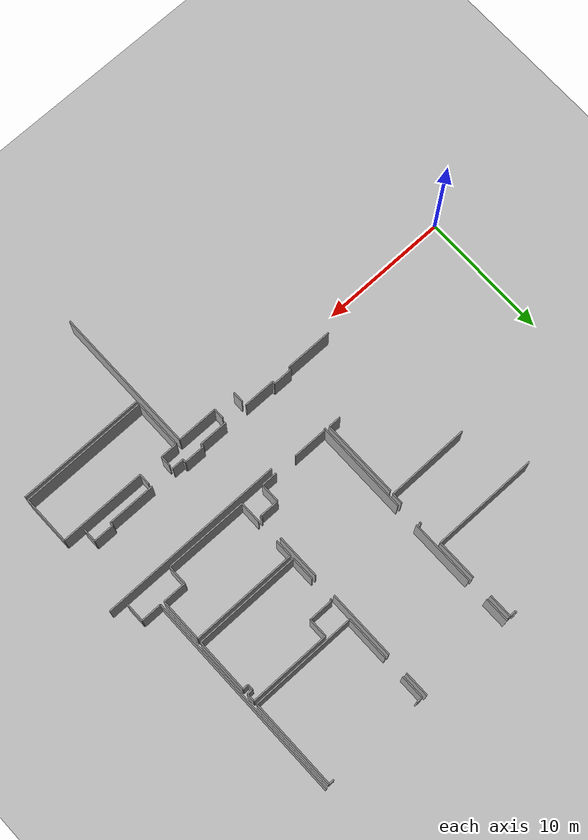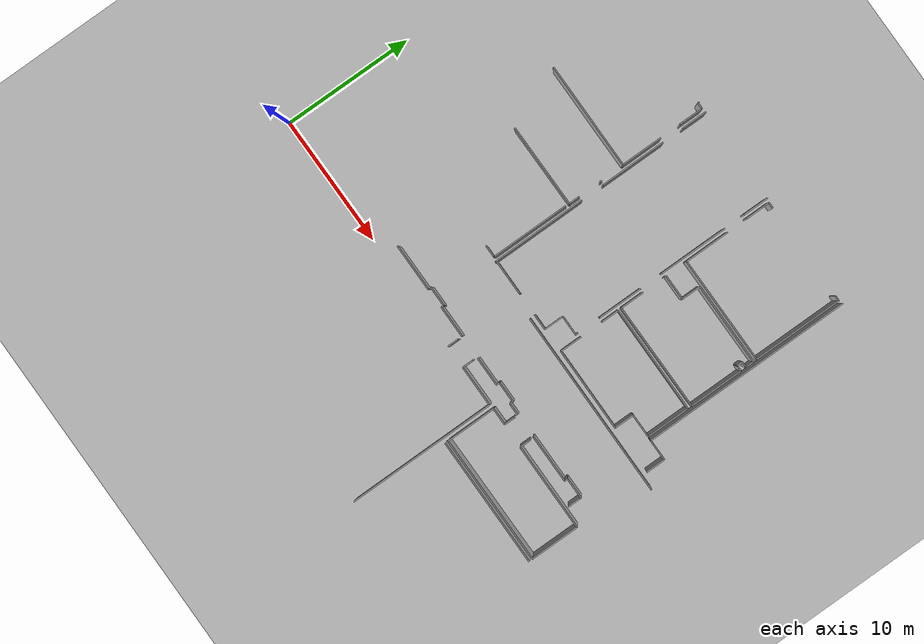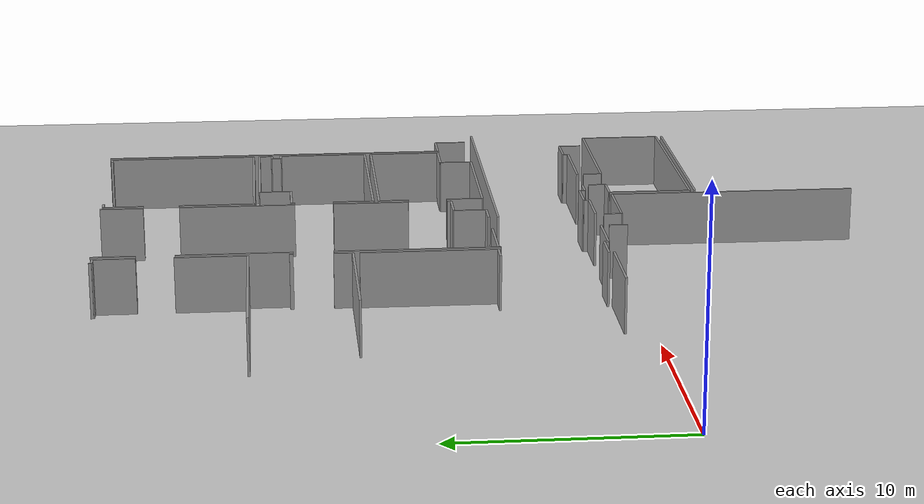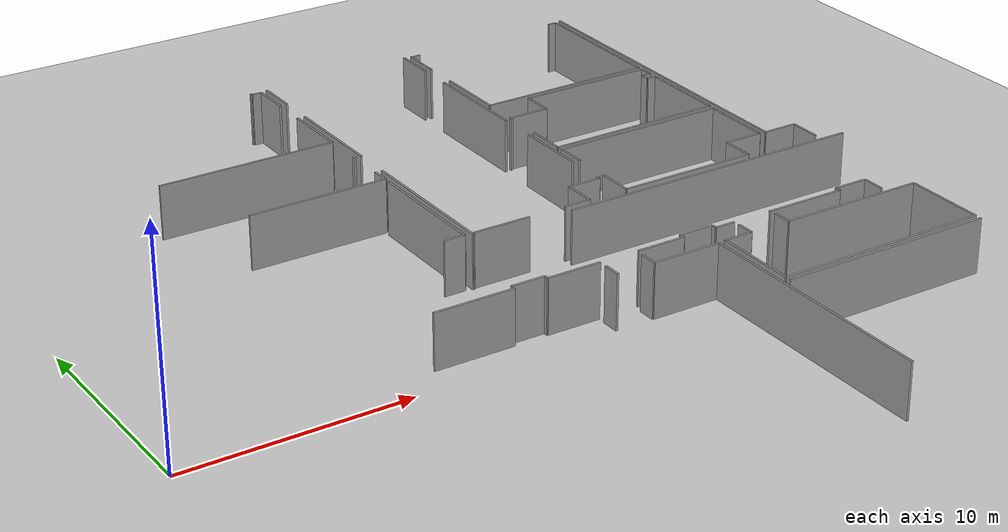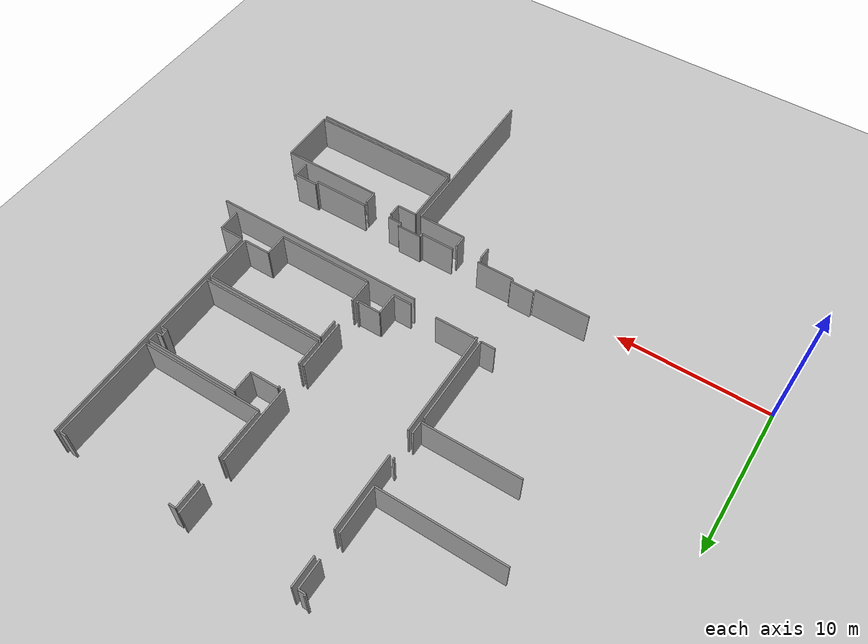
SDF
<sdf version="1.6">
 <world name="default">
  <model name="ground_plane">
   <static>1</static>
   <link name="link">
    <collision name="collision">
     <geometry><plane><normal>0 0 1</normal><size>100 100</size></plane></geometry>
     <surface><friction><ode><mu>100</mu><mu2>50</mu2></ode></friction></surface>
    </collision>
    <visual name="visual">
     <cast_shadows>0</cast_shadows>
     <geometry><plane><normal>0 0 1</normal><size>100 100</size></plane></geometry>
     <material>
      <script><uri>file://media/materials/scripts/gazebo.material</uri><name>Gazebo/Grey</name></script>
     </material>
    </visual>
   </link>
  </model>
  <model name="50057022">
   <static>1</static>
   <link name="Wall_67">
    <collision name="Wall_67_Collision">
     <geometry><box><size>0.131169729828 0.1 2.5</size></box></geometry>
     <pose>0.0655848649142 0 1.25 0 0 0</pose>
    </collision>
    <visual name="Wall_67_Visual">
     <pose>0.0655848649142 0 1.25 0 0 0</pose>
     <geometry><box><size>0.131169729828 0.1 2.5</size></box></geometry>
     <material>
      <script><uri>file://media/materials/scripts/gazebo.material</uri><name>Gazebo/Grey</name></script>
      <ambient>1 1 1 1</ambient>
     </material>
    </visual>
    <pose>72.0850537479 -0.0 0 0 0 -1.57079632679</pose>
   </link>
   <link name="Wall_68">
    <collision name="Wall_68_Collision">
     <geometry><box><size>0.466381261612 0.1 2.5</size></box></geometry>
     <pose>0.233190630806 0 1.25 0 0 0</pose>
    </collision>
    <visual name="Wall_68_Visual">
     <pose>0.233190630806 0 1.25 0 0 0</pose>
     <geometry><box><size>0.466381261612 0.1 2.5</size></box></geometry>
     <material>
      <script><uri>file://media/materials/scripts/gazebo.material</uri><name>Gazebo/Grey</name></script>
      <ambient>1 1 1 1</ambient>
     </material>
    </visual>
    <pose>72.0850537479 -0.131169729828 0 0 0 0.0</pose>
   </link>
   <link name="Wall_69">
    <collision name="Wall_69_Collision">
     <geometry><box><size>1.8363762176 0.1 2.5</size></box></geometry>
     <pose>0.918188108799 0 1.25 0 0 0</pose>
    </collision>
    <visual name="Wall_69_Visual">
     <pose>0.918188108799 0 1.25 0 0 0</pose>
     <geometry><box><size>1.8363762176 0.1 2.5</size></box></geometry>
     <material>
      <script><uri>file://media/materials/scripts/gazebo.material</uri><name>Gazebo/Grey</name></script>
      <ambient>1 1 1 1</ambient>
     </material>
    </visual>
    <pose>72.5514350095 -0.131169729828 0 0 0 -1.57079632679</pose>
   </link>
   <link name="Wall_70">
    <collision name="Wall_70_Collision">
     <geometry><box><size>3.15567755819 0.1 2.5</size></box></geometry>
     <pose>1.57783877909 0 1.25 0 0 0</pose>
    </collision>
    <visual name="Wall_70_Visual">
     <pose>1.57783877909 0 1.25 0 0 0</pose>
     <geometry><box><size>3.15567755819 0.1 2.5</size></box></geometry>
     <material>
      <script><uri>file://media/materials/scripts/gazebo.material</uri><name>Gazebo/Grey</name></script>
      <ambient>1 1 1 1</ambient>
     </material>
    </visual>
    <pose>72.5514350095 -3.60621706499 0 0 0 -1.57079632679</pose>
   </link>
   <link name="Wall_71">
    <collision name="Wall_71_Collision">
     <geometry><box><size>8.20539534595 0.1 2.5</size></box></geometry>
     <pose>4.10269767298 0 1.25 0 0 0</pose>
    </collision>
    <visual name="Wall_71_Visual">
     <pose>4.10269767298 0 1.25 0 0 0</pose>
     <geometry><box><size>8.20539534595 0.1 2.5</size></box></geometry>
     <material>
      <script><uri>file://media/materials/scripts/gazebo.material</uri><name>Gazebo/Grey</name></script>
      <ambient>1 1 1 1</ambient>
     </material>
    </visual>
    <pose>72.5514350095 -6.76189462318 0 0 0 -3.14151542755</pose>
   </link>
   <link name="Wall_82">
    <collision name="Wall_82_Collision">
     <geometry><box><size>0.165387920218 0.1 2.5</size></box></geometry>
     <pose>0.0826939601092 0 1.25 0 0 0</pose>
    </collision>
    <visual name="Wall_82_Visual">
     <pose>0.0826939601092 0 1.25 0 0 0</pose>
     <geometry><box><size>0.165387920218 0.1 2.5</size></box></geometry>
     <material>
      <script><uri>file://media/materials/scripts/gazebo.material</uri><name>Gazebo/Grey</name></script>
      <ambient>1 1 1 1</ambient>
     </material>
    </visual>
    <pose>72.5895819551 -8.55099904443 0 0 0 -1.57079632679</pose>
   </link>
   <link name="Wall_83">
    <collision name="Wall_83_Collision">
     <geometry><box><size>0.845316036672 0.1 2.5</size></box></geometry>
     <pose>0.422658018336 0 1.25 0 0 0</pose>
    </collision>
    <visual name="Wall_83_Visual">
     <pose>0.422658018336 0 1.25 0 0 0</pose>
     <geometry><box><size>0.845316036672 0.1 2.5</size></box></geometry>
     <material>
      <script><uri>file://media/materials/scripts/gazebo.material</uri><name>Gazebo/Grey</name></script>
      <ambient>1 1 1 1</ambient>
     </material>
    </visual>
    <pose>72.5895819551 -10.449855143 0 0 0 -1.57079632679</pose>
   </link>
   <link name="Wall_84">
    <collision name="Wall_84_Collision">
     <geometry><box><size>6.40294187864 0.1 2.5</size></box></geometry>
     <pose>3.20147093932 0 1.25 0 0 0</pose>
    </collision>
    <visual name="Wall_84_Visual">
     <pose>3.20147093932 0 1.25 0 0 0</pose>
     <geometry><box><size>6.40294187864 0.1 2.5</size></box></geometry>
     <material>
      <script><uri>file://media/materials/scripts/gazebo.material</uri><name>Gazebo/Grey</name></script>
      <ambient>1 1 1 1</ambient>
     </material>
    </visual>
    <pose>72.5895819551 -11.2951711797 0 0 0 -3.13644642611</pose>
   </link>
   <link name="Wall_85">
    <collision name="Wall_85_Collision">
     <geometry><box><size>7.25729797961 0.1 2.5</size></box></geometry>
     <pose>3.6286489898 0 1.25 0 0 0</pose>
    </collision>
    <visual name="Wall_85_Visual">
     <pose>3.6286489898 0 1.25 0 0 0</pose>
     <geometry><box><size>7.25729797961 0.1 2.5</size></box></geometry>
     <material>
      <script><uri>file://media/materials/scripts/gazebo.material</uri><name>Gazebo/Grey</name></script>
      <ambient>1 1 1 1</ambient>
     </material>
    </visual>
    <pose>72.8917159028 -17.7333870686 0 0 0 1.57079632679</pose>
   </link>
   <link name="Wall_86">
    <collision name="Wall_86_Collision">
     <geometry><box><size>5.07671211349 0.1 2.5</size></box></geometry>
     <pose>2.53835605675 0 1.25 0 0 0</pose>
    </collision>
    <visual name="Wall_86_Visual">
     <pose>2.53835605675 0 1.25 0 0 0</pose>
     <geometry><box><size>5.07671211349 0.1 2.5</size></box></geometry>
     <material>
      <script><uri>file://media/materials/scripts/gazebo.material</uri><name>Gazebo/Grey</name></script>
      <ambient>1 1 1 1</ambient>
     </material>
    </visual>
    <pose>72.8917159028 -8.7135988158 0 0 0 1.57079632679</pose>
   </link>
   <link name="Wall_87">
    <collision name="Wall_87_Collision">
     <geometry><box><size>1.95170419262 0.1 2.5</size></box></geometry>
     <pose>0.975852096308 0 1.25 0 0 0</pose>
    </collision>
    <visual name="Wall_87_Visual">
     <pose>0.975852096308 0 1.25 0 0 0</pose>
     <geometry><box><size>1.95170419262 0.1 2.5</size></box></geometry>
     <material>
      <script><uri>file://media/materials/scripts/gazebo.material</uri><name>Gazebo/Grey</name></script>
      <ambient>1 1 1 1</ambient>
     </material>
    </visual>
    <pose>72.8917159028 -1.97134796858 0 0 0 1.57079632679</pose>
   </link>
   <link name="Wall_88">
    <collision name="Wall_88_Collision">
     <geometry><box><size>1.96437759646 0.1 2.5</size></box></geometry>
     <pose>0.982188798232 0 1.25 0 0 0</pose>
    </collision>
    <visual name="Wall_88_Visual">
     <pose>0.982188798232 0 1.25 0 0 0</pose>
     <geometry><box><size>1.96437759646 0.1 2.5</size></box></geometry>
     <material>
      <script><uri>file://media/materials/scripts/gazebo.material</uri><name>Gazebo/Grey</name></script>
      <ambient>1 1 1 1</ambient>
     </material>
    </visual>
    <pose>80.1434375848 -0.0196437759646 0 0 0 -1.57079632679</pose>
   </link>
   <link name="Wall_89">
    <collision name="Wall_89_Collision">
     <geometry><box><size>5.29000550026 0.1 2.5</size></box></geometry>
     <pose>2.64500275013 0 1.25 0 0 0</pose>
    </collision>
    <visual name="Wall_89_Visual">
     <pose>2.64500275013 0 1.25 0 0 0</pose>
     <geometry><box><size>5.29000550026 0.1 2.5</size></box></geometry>
     <material>
      <script><uri>file://media/materials/scripts/gazebo.material</uri><name>Gazebo/Grey</name></script>
      <ambient>1 1 1 1</ambient>
     </material>
    </visual>
    <pose>80.1434375848 -3.62738164942 0 0 0 -1.57079632679</pose>
   </link>
   <link name="Wall_90">
    <collision name="Wall_90_Collision">
     <geometry><box><size>3.44665891054 0.1 2.5</size></box></geometry>
     <pose>1.72332945527 0 1.25 0 0 0</pose>
    </collision>
    <visual name="Wall_90_Visual">
     <pose>1.72332945527 0 1.25 0 0 0</pose>
     <geometry><box><size>3.44665891054 0.1 2.5</size></box></geometry>
     <material>
      <script><uri>file://media/materials/scripts/gazebo.material</uri><name>Gazebo/Grey</name></script>
      <ambient>1 1 1 1</ambient>
     </material>
    </visual>
    <pose>80.1434375848 -10.700028135 0 0 0 -1.57079632679</pose>
   </link>
   <link name="Wall_91">
    <collision name="Wall_91_Collision">
     <geometry><box><size>0.177427653874 0.1 2.5</size></box></geometry>
     <pose>0.0887138269371 0 1.25 0 0 0</pose>
    </collision>
    <visual name="Wall_91_Visual">
     <pose>0.0887138269371 0 1.25 0 0 0</pose>
     <geometry><box><size>0.177427653874 0.1 2.5</size></box></geometry>
     <material>
      <script><uri>file://media/materials/scripts/gazebo.material</uri><name>Gazebo/Grey</name></script>
      <ambient>1 1 1 1</ambient>
     </material>
    </visual>
    <pose>80.1434375848 -15.9501124131 0 0 0 -1.57079632679</pose>
   </link>
   <link name="Wall_92">
    <collision name="Wall_92_Collision">
     <geometry><box><size>1.53348186563 0.1 2.5</size></box></geometry>
     <pose>0.766740932813 0 1.25 0 0 0</pose>
    </collision>
    <visual name="Wall_92_Visual">
     <pose>0.766740932813 0 1.25 0 0 0</pose>
     <geometry><box><size>1.53348186563 0.1 2.5</size></box></geometry>
     <material>
      <script><uri>file://media/materials/scripts/gazebo.material</uri><name>Gazebo/Grey</name></script>
      <ambient>1 1 1 1</ambient>
     </material>
    </visual>
    <pose>80.1434375848 -16.127540067 0 0 0 3.14159265359</pose>
   </link>
   <link name="Wall_93">
    <collision name="Wall_93_Collision">
     <geometry><box><size>1.49546165408 0.1 2.5</size></box></geometry>
     <pose>0.747730827041 0 1.25 0 0 0</pose>
    </collision>
    <visual name="Wall_93_Visual">
     <pose>0.747730827041 0 1.25 0 0 0</pose>
     <geometry><box><size>1.49546165408 0.1 2.5</size></box></geometry>
     <material>
      <script><uri>file://media/materials/scripts/gazebo.material</uri><name>Gazebo/Grey</name></script>
      <ambient>1 1 1 1</ambient>
     </material>
    </visual>
    <pose>78.6099557191 -16.127540067 0 0 0 -1.57079632679</pose>
   </link>
   <link name="Wall_94">
    <collision name="Wall_94_Collision">
     <geometry><box><size>1.21664676942 0.1 2.5</size></box></geometry>
     <pose>0.608323384711 0 1.25 0 0 0</pose>
    </collision>
    <visual name="Wall_94_Visual">
     <pose>0.608323384711 0 1.25 0 0 0</pose>
     <geometry><box><size>1.21664676942 0.1 2.5</size></box></geometry>
     <material>
      <script><uri>file://media/materials/scripts/gazebo.material</uri><name>Gazebo/Grey</name></script>
      <ambient>1 1 1 1</ambient>
     </material>
    </visual>
    <pose>78.6099557191 -17.623001721 0 0 0 3.14159265359</pose>
   </link>
   <link name="Wall_95">
    <collision name="Wall_95_Collision">
     <geometry><box><size>2.68321306273 0.1 2.5</size></box></geometry>
     <pose>1.34160653137 0 1.25 0 0 0</pose>
    </collision>
    <visual name="Wall_95_Visual">
     <pose>1.34160653137 0 1.25 0 0 0</pose>
     <geometry><box><size>2.68321306273 0.1 2.5</size></box></geometry>
     <material>
      <script><uri>file://media/materials/scripts/gazebo.material</uri><name>Gazebo/Grey</name></script>
      <ambient>1 1 1 1</ambient>
     </material>
    </visual>
    <pose>75.6503357185 -17.623001721 0 0 0 3.14159265359</pose>
   </link>
   <link name="Wall_96">
    <collision name="Wall_96_Collision">
     <geometry><box><size>0.133682846053 0.1 2.5</size></box></geometry>
     <pose>0.0668414230267 0 1.25 0 0 0</pose>
    </collision>
    <visual name="Wall_96_Visual">
     <pose>0.0668414230267 0 1.25 0 0 0</pose>
     <geometry><box><size>0.133682846053 0.1 2.5</size></box></geometry>
     <material>
      <script><uri>file://media/materials/scripts/gazebo.material</uri><name>Gazebo/Grey</name></script>
      <ambient>1 1 1 1</ambient>
     </material>
    </visual>
    <pose>72.9671226557 -17.623001721 0 0 0 -2.17010531154</pose>
   </link>
   <link name="Wall_97">
    <collision name="Wall_97_Collision">
     <geometry><box><size>3.44032220862 0.1 2.5</size></box></geometry>
     <pose>1.72016110431 0 1.25 0 0 0</pose>
    </collision>
    <visual name="Wall_97_Visual">
     <pose>1.72016110431 0 1.25 0 0 0</pose>
     <geometry><box><size>3.44032220862 0.1 2.5</size></box></geometry>
     <material>
      <script><uri>file://media/materials/scripts/gazebo.material</uri><name>Gazebo/Grey</name></script>
      <ambient>1 1 1 1</ambient>
     </material>
    </visual>
    <pose>80.4609063511 -7.05807207111 0 0 0 1.57079632679</pose>
   </link>
   <link name="Wall_98">
    <collision name="Wall_98_Collision">
     <geometry><box><size>1.83764355798 0.1 2.5</size></box></geometry>
     <pose>0.918821778991 0 1.25 0 0 0</pose>
    </collision>
    <visual name="Wall_98_Visual">
     <pose>0.918821778991 0 1.25 0 0 0</pose>
     <geometry><box><size>1.83764355798 0.1 2.5</size></box></geometry>
     <material>
      <script><uri>file://media/materials/scripts/gazebo.material</uri><name>Gazebo/Grey</name></script>
      <ambient>1 1 1 1</ambient>
     </material>
    </visual>
    <pose>80.4609063511 -1.98402137243 0 0 0 1.57079632679</pose>
   </link>
   <link name="Wall_99">
    <collision name="Wall_99_Collision">
     <geometry><box><size>0.468282272189 0.1 2.5</size></box></geometry>
     <pose>0.234141136095 0 1.25 0 0 0</pose>
    </collision>
    <visual name="Wall_99_Visual">
     <pose>0.234141136095 0 1.25 0 0 0</pose>
     <geometry><box><size>0.468282272189 0.1 2.5</size></box></geometry>
     <material>
      <script><uri>file://media/materials/scripts/gazebo.material</uri><name>Gazebo/Grey</name></script>
      <ambient>1 1 1 1</ambient>
     </material>
    </visual>
    <pose>80.4609063511 -0.146377814446 0 0 0 0.0</pose>
   </link>
   <link name="Wall_100">
    <collision name="Wall_100_Collision">
     <geometry><box><size>0.418222326989 0.1 2.5</size></box></geometry>
     <pose>0.209111163495 0 1.25 0 0 0</pose>
    </collision>
    <visual name="Wall_100_Visual">
     <pose>0.209111163495 0 1.25 0 0 0</pose>
     <geometry><box><size>0.418222326989 0.1 2.5</size></box></geometry>
     <material>
      <script><uri>file://media/materials/scripts/gazebo.material</uri><name>Gazebo/Grey</name></script>
      <ambient>1 1 1 1</ambient>
     </material>
    </visual>
    <pose>88.2544160476 -0.146377814446 0 0 0 0.0</pose>
   </link>
   <link name="Wall_101">
    <collision name="Wall_101_Collision">
     <geometry><box><size>6.89433169339 0.1 2.5</size></box></geometry>
     <pose>3.4471658467 0 1.25 0 0 0</pose>
    </collision>
    <visual name="Wall_101_Visual">
     <pose>3.4471658467 0 1.25 0 0 0</pose>
     <geometry><box><size>6.89433169339 0.1 2.5</size></box></geometry>
     <material>
      <script><uri>file://media/materials/scripts/gazebo.material</uri><name>Gazebo/Grey</name></script>
      <ambient>1 1 1 1</ambient>
     </material>
    </visual>
    <pose>88.6726383746 -0.146377814446 0 0 0 -1.57079632679</pose>
   </link>
   <link name="Wall_102">
    <collision name="Wall_102_Collision">
     <geometry><box><size>8.21175037875 0.1 2.5</size></box></geometry>
     <pose>4.10587518938 0 1.25 0 0 0</pose>
    </collision>
    <visual name="Wall_102_Visual">
     <pose>4.10587518938 0 1.25 0 0 0</pose>
     <geometry><box><size>8.21175037875 0.1 2.5</size></box></geometry>
     <material>
      <script><uri>file://media/materials/scripts/gazebo.material</uri><name>Gazebo/Grey</name></script>
      <ambient>1 1 1 1</ambient>
     </material>
    </visual>
    <pose>88.6726383746 -7.04070950784 0 0 0 -3.13947829606</pose>
   </link>
   <link name="Wall_103">
    <collision name="Wall_103_Collision">
     <geometry><box><size>1.85145756818 0.1 2.5</size></box></geometry>
     <pose>0.925728784088 0 1.25 0 0 0</pose>
    </collision>
    <visual name="Wall_103_Visual">
     <pose>0.925728784088 0 1.25 0 0 0</pose>
     <geometry><box><size>1.85145756818 0.1 2.5</size></box></geometry>
     <material>
      <script><uri>file://media/materials/scripts/gazebo.material</uri><name>Gazebo/Grey</name></script>
      <ambient>1 1 1 1</ambient>
     </material>
    </visual>
    <pose>80.4581182023 -12.5404598418 0 0 0 1.57079632679</pose>
   </link>
   <link name="Wall_104">
    <collision name="Wall_104_Collision">
     <geometry><box><size>0.143716399638 0.1 2.5</size></box></geometry>
     <pose>0.071858199819 0 1.25 0 0 0</pose>
    </collision>
    <visual name="Wall_104_Visual">
     <pose>0.071858199819 0 1.25 0 0 0</pose>
     <geometry><box><size>0.143716399638 0.1 2.5</size></box></geometry>
     <material>
      <script><uri>file://media/materials/scripts/gazebo.material</uri><name>Gazebo/Grey</name></script>
      <ambient>1 1 1 1</ambient>
     </material>
    </visual>
    <pose>80.4581182023 -8.9171336816 0 0 0 1.57079632679</pose>
   </link>
   <link name="Wall_105">
    <collision name="Wall_105_Collision">
     <geometry><box><size>1.9193870128 0.1 2.5</size></box></geometry>
     <pose>0.959693506401 0 1.25 0 0 0</pose>
    </collision>
    <visual name="Wall_105_Visual">
     <pose>0.959693506401 0 1.25 0 0 0</pose>
     <geometry><box><size>1.9193870128 0.1 2.5</size></box></geometry>
     <material>
      <script><uri>file://media/materials/scripts/gazebo.material</uri><name>Gazebo/Grey</name></script>
      <ambient>1 1 1 1</ambient>
     </material>
    </visual>
    <pose>80.4581182023 -8.77341728196 0 0 0 0.0</pose>
   </link>
   <link name="Wall_106">
    <collision name="Wall_106_Collision">
     <geometry><box><size>1.45668103831 0.1 2.5</size></box></geometry>
     <pose>0.728340519153 0 1.25 0 0 0</pose>
    </collision>
    <visual name="Wall_106_Visual">
     <pose>0.728340519153 0 1.25 0 0 0</pose>
     <geometry><box><size>1.45668103831 0.1 2.5</size></box></geometry>
     <material>
      <script><uri>file://media/materials/scripts/gazebo.material</uri><name>Gazebo/Grey</name></script>
      <ambient>1 1 1 1</ambient>
     </material>
    </visual>
    <pose>82.3775052151 -8.77341728196 0 0 0 1.57079632679</pose>
   </link>
   <link name="Wall_107">
    <collision name="Wall_107_Collision">
     <geometry><box><size>6.30552535061 0.1 2.5</size></box></geometry>
     <pose>3.1527626753 0 1.25 0 0 0</pose>
    </collision>
    <visual name="Wall_107_Visual">
     <pose>3.1527626753 0 1.25 0 0 0</pose>
     <geometry><box><size>6.30552535061 0.1 2.5</size></box></geometry>
     <material>
      <script><uri>file://media/materials/scripts/gazebo.material</uri><name>Gazebo/Grey</name></script>
      <ambient>1 1 1 1</ambient>
     </material>
    </visual>
    <pose>82.3775052151 -7.31673624365 0 0 0 0.0</pose>
   </link>
   <link name="Wall_108">
    <collision name="Wall_108_Collision">
     <geometry><box><size>0.622897799137 0.1 2.5</size></box></geometry>
     <pose>0.311448899568 0 1.25 0 0 0</pose>
    </collision>
    <visual name="Wall_108_Visual">
     <pose>0.311448899568 0 1.25 0 0 0</pose>
     <geometry><box><size>0.622897799137 0.1 2.5</size></box></geometry>
     <material>
      <script><uri>file://media/materials/scripts/gazebo.material</uri><name>Gazebo/Grey</name></script>
      <ambient>1 1 1 1</ambient>
     </material>
    </visual>
    <pose>88.6830305657 -7.31673624365 0 0 0 -1.57079632679</pose>
   </link>
   <link name="Wall_109">
    <collision name="Wall_109_Collision">
     <geometry><box><size>0.431149198914 0.1 2.5</size></box></geometry>
     <pose>0.215574599457 0 1.25 0 0 0</pose>
    </collision>
    <visual name="Wall_109_Visual">
     <pose>0.215574599457 0 1.25 0 0 0</pose>
     <geometry><box><size>0.431149198914 0.1 2.5</size></box></geometry>
     <material>
      <script><uri>file://media/materials/scripts/gazebo.material</uri><name>Gazebo/Grey</name></script>
      <ambient>1 1 1 1</ambient>
     </material>
    </visual>
    <pose>88.6830305657 -7.93963404279 0 0 0 3.14159265359</pose>
   </link>
   <link name="Wall_110">
    <collision name="Wall_110_Collision">
     <geometry><box><size>0.431275932953 0.1 2.5</size></box></geometry>
     <pose>0.215637966476 0 1.25 0 0 0</pose>
    </collision>
    <visual name="Wall_110_Visual">
     <pose>0.215637966476 0 1.25 0 0 0</pose>
     <geometry><box><size>0.431275932953 0.1 2.5</size></box></geometry>
     <material>
      <script><uri>file://media/materials/scripts/gazebo.material</uri><name>Gazebo/Grey</name></script>
      <ambient>1 1 1 1</ambient>
     </material>
    </visual>
    <pose>88.2518813668 -7.93963404279 0 0 0 -1.57079632679</pose>
   </link>
   <link name="Wall_111">
    <collision name="Wall_111_Collision">
     <geometry><box><size>0.440780985839 0.1 2.5</size></box></geometry>
     <pose>0.220390492919 0 1.25 0 0 0</pose>
    </collision>
    <visual name="Wall_111_Visual">
     <pose>0.220390492919 0 1.25 0 0 0</pose>
     <geometry><box><size>0.440780985839 0.1 2.5</size></box></geometry>
     <material>
      <script><uri>file://media/materials/scripts/gazebo.material</uri><name>Gazebo/Grey</name></script>
      <ambient>1 1 1 1</ambient>
     </material>
    </visual>
    <pose>88.2518813668 -8.37090997574 0 0 0 0.0</pose>
   </link>
   <link name="Wall_112">
    <collision name="Wall_112_Collision">
     <geometry><box><size>4.13026231411 0.1 2.5</size></box></geometry>
     <pose>2.06513115706 0 1.25 0 0 0</pose>
    </collision>
    <visual name="Wall_112_Visual">
     <pose>2.06513115706 0 1.25 0 0 0</pose>
     <geometry><box><size>4.13026231411 0.1 2.5</size></box></geometry>
     <material>
      <script><uri>file://media/materials/scripts/gazebo.material</uri><name>Gazebo/Grey</name></script>
      <ambient>1 1 1 1</ambient>
     </material>
    </visual>
    <pose>88.6926623526 -8.37090997574 0 0 0 -1.57079632679</pose>
   </link>
   <link name="Wall_113">
    <collision name="Wall_113_Collision">
     <geometry><box><size>8.23463787155 0.1 2.5</size></box></geometry>
     <pose>4.11731893578 0 1.25 0 0 0</pose>
    </collision>
    <visual name="Wall_113_Visual">
     <pose>4.11731893578 0 1.25 0 0 0</pose>
     <geometry><box><size>8.23463787155 0.1 2.5</size></box></geometry>
     <material>
      <script><uri>file://media/materials/scripts/gazebo.material</uri><name>Gazebo/Grey</name></script>
      <ambient>1 1 1 1</ambient>
     </material>
    </visual>
    <pose>88.6926623526 -12.5011722899 0 0 0 -3.136821624</pose>
   </link>
   <link name="Wall_121">
    <collision name="Wall_121_Collision">
     <geometry><box><size>1.46618609119 0.1 2.5</size></box></geometry>
     <pose>0.733093045596 0 1.25 0 0 0</pose>
    </collision>
    <visual name="Wall_121_Visual">
     <pose>0.733093045596 0 1.25 0 0 0</pose>
     <geometry><box><size>1.46618609119 0.1 2.5</size></box></geometry>
     <material>
      <script><uri>file://media/materials/scripts/gazebo.material</uri><name>Gazebo/Grey</name></script>
      <ambient>1 1 1 1</ambient>
     </material>
    </visual>
    <pose>90.5804925899 -17.6184392957 0 0 0 1.57079632679</pose>
   </link>
   <link name="Wall_122">
    <collision name="Wall_122_Collision">
     <geometry><box><size>1.60039743794 0.1 2.5</size></box></geometry>
     <pose>0.800198718972 0 1.25 0 0 0</pose>
    </collision>
    <visual name="Wall_122_Visual">
     <pose>0.800198718972 0 1.25 0 0 0</pose>
     <geometry><box><size>1.60039743794 0.1 2.5</size></box></geometry>
     <material>
      <script><uri>file://media/materials/scripts/gazebo.material</uri><name>Gazebo/Grey</name></script>
      <ambient>1 1 1 1</ambient>
     </material>
    </visual>
    <pose>90.5804925899 -16.1522532045 0 0 0 3.14159265359</pose>
   </link>
   <link name="Wall_123">
    <collision name="Wall_123_Collision">
     <geometry><box><size>16.1231043756 0.1 2.5</size></box></geometry>
     <pose>8.06155218781 0 1.25 0 0 0</pose>
    </collision>
    <visual name="Wall_123_Visual">
     <pose>8.06155218781 0 1.25 0 0 0</pose>
     <geometry><box><size>16.1231043756 0.1 2.5</size></box></geometry>
     <material>
      <script><uri>file://media/materials/scripts/gazebo.material</uri><name>Gazebo/Grey</name></script>
      <ambient>1 1 1 1</ambient>
     </material>
    </visual>
    <pose>88.9800951519 -16.1522532045 0 0 0 1.57079632679</pose>
   </link>
   <link name="Wall_155">
    <collision name="Wall_155_Collision">
     <geometry><box><size>1.6674397443 0.1 2.5</size></box></geometry>
     <pose>0.833719872151 0 1.25 0 0 0</pose>
    </collision>
    <visual name="Wall_155_Visual">
     <pose>0.833719872151 0 1.25 0 0 0</pose>
     <geometry><box><size>1.6674397443 0.1 2.5</size></box></geometry>
     <material>
      <script><uri>file://media/materials/scripts/gazebo.material</uri><name>Gazebo/Grey</name></script>
      <ambient>1 1 1 1</ambient>
     </material>
    </visual>
    <pose>80.4705381381 -17.6088075087 0 0 0 1.57079632679</pose>
   </link>
   <link name="Wall_156">
    <collision name="Wall_156_Collision">
     <geometry><box><size>1.3687276156 0.1 2.5</size></box></geometry>
     <pose>0.6843638078 0 1.25 0 0 0</pose>
    </collision>
    <visual name="Wall_156_Visual">
     <pose>0.6843638078 0 1.25 0 0 0</pose>
     <geometry><box><size>1.3687276156 0.1 2.5</size></box></geometry>
     <material>
      <script><uri>file://media/materials/scripts/gazebo.material</uri><name>Gazebo/Grey</name></script>
      <ambient>1 1 1 1</ambient>
     </material>
    </visual>
    <pose>80.4705381381 -14.1758358744 0 0 0 1.57079632679</pose>
   </link>
   <link name="Wall_157">
    <collision name="Wall_157_Collision">
     <geometry><box><size>8.20210023649 0.1 2.5</size></box></geometry>
     <pose>4.10105011824 0 1.25 0 0 0</pose>
    </collision>
    <visual name="Wall_157_Visual">
     <pose>4.10105011824 0 1.25 0 0 0</pose>
     <geometry><box><size>8.20210023649 0.1 2.5</size></box></geometry>
     <material>
      <script><uri>file://media/materials/scripts/gazebo.material</uri><name>Gazebo/Grey</name></script>
      <ambient>1 1 1 1</ambient>
     </material>
    </visual>
    <pose>80.4705381381 -12.8071082588 0 0 0 0.0</pose>
   </link>
   <link name="Wall_158">
    <collision name="Wall_158_Collision">
     <geometry><box><size>3.32043180822 0.1 2.5</size></box></geometry>
     <pose>1.66021590411 0 1.25 0 0 0</pose>
    </collision>
    <visual name="Wall_158_Visual">
     <pose>1.66021590411 0 1.25 0 0 0</pose>
     <geometry><box><size>3.32043180822 0.1 2.5</size></box></geometry>
     <material>
      <script><uri>file://media/materials/scripts/gazebo.material</uri><name>Gazebo/Grey</name></script>
      <ambient>1 1 1 1</ambient>
     </material>
    </visual>
    <pose>88.6726383746 -12.8071082588 0 0 0 -1.57079632679</pose>
   </link>
   <link name="Wall_159">
    <collision name="Wall_159_Collision">
     <geometry><box><size>1.79962334644 0.1 2.5</size></box></geometry>
     <pose>0.899811673219 0 1.25 0 0 0</pose>
    </collision>
    <visual name="Wall_159_Visual">
     <pose>0.899811673219 0 1.25 0 0 0</pose>
     <geometry><box><size>1.79962334644 0.1 2.5</size></box></geometry>
     <material>
      <script><uri>file://media/materials/scripts/gazebo.material</uri><name>Gazebo/Grey</name></script>
      <ambient>1 1 1 1</ambient>
     </material>
    </visual>
    <pose>88.6726383746 -16.127540067 0 0 0 3.14159265359</pose>
   </link>
   <link name="Wall_160">
    <collision name="Wall_160_Collision">
     <geometry><box><size>1.49546165408 0.1 2.5</size></box></geometry>
     <pose>0.747730827041 0 1.25 0 0 0</pose>
    </collision>
    <visual name="Wall_160_Visual">
     <pose>0.747730827041 0 1.25 0 0 0</pose>
     <geometry><box><size>1.49546165408 0.1 2.5</size></box></geometry>
     <material>
      <script><uri>file://media/materials/scripts/gazebo.material</uri><name>Gazebo/Grey</name></script>
      <ambient>1 1 1 1</ambient>
     </material>
    </visual>
    <pose>86.8730150281 -16.127540067 0 0 0 -1.57079632679</pose>
   </link>
   <link name="Wall_161">
    <collision name="Wall_161_Collision">
     <geometry><box><size>6.40249262423 0.1 2.5</size></box></geometry>
     <pose>3.20124631211 0 1.25 0 0 0</pose>
    </collision>
    <visual name="Wall_161_Visual">
     <pose>3.20124631211 0 1.25 0 0 0</pose>
     <geometry><box><size>6.40249262423 0.1 2.5</size></box></geometry>
     <material>
      <script><uri>file://media/materials/scripts/gazebo.material</uri><name>Gazebo/Grey</name></script>
      <ambient>1 1 1 1</ambient>
     </material>
    </visual>
    <pose>86.8730150281 -17.623001721 0 0 0 3.13937566955</pose>
   </link>
   <link name="Wall_164">
    <collision name="Wall_164_Collision">
     <geometry><box><size>6.0196133598 0.1 2.5</size></box></geometry>
     <pose>3.0098066799 0 1.25 0 0 0</pose>
    </collision>
    <visual name="Wall_164_Visual">
     <pose>3.0098066799 0 1.25 0 0 0</pose>
     <geometry><box><size>6.0196133598 0.1 2.5</size></box></geometry>
     <material>
      <script><uri>file://media/materials/scripts/gazebo.material</uri><name>Gazebo/Grey</name></script>
      <ambient>1 1 1 1</ambient>
     </material>
    </visual>
    <pose>72.5660094239 -11.5780415536 0 0 0 -1.57079632679</pose>
   </link>
   <link name="Wall_165">
    <collision name="Wall_165_Collision">
     <geometry><box><size>0.964446032844 0.1 2.5</size></box></geometry>
     <pose>0.482223016422 0 1.25 0 0 0</pose>
    </collision>
    <visual name="Wall_165_Visual">
     <pose>0.482223016422 0 1.25 0 0 0</pose>
     <geometry><box><size>0.964446032844 0.1 2.5</size></box></geometry>
     <material>
      <script><uri>file://media/materials/scripts/gazebo.material</uri><name>Gazebo/Grey</name></script>
      <ambient>1 1 1 1</ambient>
     </material>
    </visual>
    <pose>72.5660094239 -17.5976549134 0 0 0 3.14159265359</pose>
   </link>
   <link name="Wall_507">
    <collision name="Wall_507_Collision">
     <geometry><box><size>0.830741622246 0.1 2.5</size></box></geometry>
     <pose>0.415370811123 0 1.25 0 0 0</pose>
    </collision>
    <visual name="Wall_507_Visual">
     <pose>0.415370811123 0 1.25 0 0 0</pose>
     <geometry><box><size>0.830741622246 0.1 2.5</size></box></geometry>
     <material>
      <script><uri>file://media/materials/scripts/gazebo.material</uri><name>Gazebo/Grey</name></script>
      <ambient>1 1 1 1</ambient>
     </material>
    </visual>
    <pose>75.7286573542 -23.7125722701 0 0 0 1.57079632679</pose>
   </link>
   <link name="Wall_508">
    <collision name="Wall_508_Collision">
     <geometry><box><size>0.816167207821 0.1 2.5</size></box></geometry>
     <pose>0.408083603911 0 1.25 0 0 0</pose>
    </collision>
    <visual name="Wall_508_Visual">
     <pose>0.408083603911 0 1.25 0 0 0</pose>
     <geometry><box><size>0.816167207821 0.1 2.5</size></box></geometry>
     <material>
      <script><uri>file://media/materials/scripts/gazebo.material</uri><name>Gazebo/Grey</name></script>
      <ambient>1 1 1 1</ambient>
     </material>
    </visual>
    <pose>77.4775870853 -22.8818306478 0 0 0 -1.57079632679</pose>
   </link>
   <link name="Wall_509">
    <collision name="Wall_509_Collision">
     <geometry><box><size>3.14807351588 0.1 2.5</size></box></geometry>
     <pose>1.57403675794 0 1.25 0 0 0</pose>
    </collision>
    <visual name="Wall_509_Visual">
     <pose>1.57403675794 0 1.25 0 0 0</pose>
     <geometry><box><size>3.14807351588 0.1 2.5</size></box></geometry>
     <material>
      <script><uri>file://media/materials/scripts/gazebo.material</uri><name>Gazebo/Grey</name></script>
      <ambient>1 1 1 1</ambient>
     </material>
    </visual>
    <pose>77.4775870853 -23.6979978557 0 0 0 0.0</pose>
   </link>
   <link name="Wall_510">
    <collision name="Wall_510_Collision">
     <geometry><box><size>11.3658887731 0.1 2.5</size></box></geometry>
     <pose>5.68294438657 0 1.25 0 0 0</pose>
    </collision>
    <visual name="Wall_510_Visual">
     <pose>5.68294438657 0 1.25 0 0 0</pose>
     <geometry><box><size>11.3658887731 0.1 2.5</size></box></geometry>
     <material>
      <script><uri>file://media/materials/scripts/gazebo.material</uri><name>Gazebo/Grey</name></script>
      <ambient>1 1 1 1</ambient>
     </material>
    </visual>
    <pose>80.6256606012 -23.6979978557 0 0 0 -1.57079632679</pose>
   </link>
   <link name="Wall_517">
    <collision name="Wall_517_Collision">
     <geometry><box><size>3.80202115445 0.1 2.5</size></box></geometry>
     <pose>1.90101057722 0 1.25 0 0 0</pose>
    </collision>
    <visual name="Wall_517_Visual">
     <pose>1.90101057722 0 1.25 0 0 0</pose>
     <geometry><box><size>3.80202115445 0.1 2.5</size></box></geometry>
     <material>
      <script><uri>file://media/materials/scripts/gazebo.material</uri><name>Gazebo/Grey</name></script>
      <ambient>1 1 1 1</ambient>
     </material>
    </visual>
    <pose>80.9925556426 -27.4322162995 0 0 0 1.57079632679</pose>
   </link>
   <link name="Wall_518">
    <collision name="Wall_518_Collision">
     <geometry><box><size>1.31803400021 0.1 2.5</size></box></geometry>
     <pose>0.659017000104 0 1.25 0 0 0</pose>
    </collision>
    <visual name="Wall_518_Visual">
     <pose>0.659017000104 0 1.25 0 0 0</pose>
     <geometry><box><size>1.31803400021 0.1 2.5</size></box></geometry>
     <material>
      <script><uri>file://media/materials/scripts/gazebo.material</uri><name>Gazebo/Grey</name></script>
      <ambient>1 1 1 1</ambient>
     </material>
    </visual>
    <pose>80.9925556426 -23.6301951451 0 0 0 0.0</pose>
   </link>
   <link name="Wall_519">
    <collision name="Wall_519_Collision">
     <geometry><box><size>0.811097846282 0.1 2.5</size></box></geometry>
     <pose>0.405548923141 0 1.25 0 0 0</pose>
    </collision>
    <visual name="Wall_519_Visual">
     <pose>0.405548923141 0 1.25 0 0 0</pose>
     <geometry><box><size>0.811097846282 0.1 2.5</size></box></geometry>
     <material>
      <script><uri>file://media/materials/scripts/gazebo.material</uri><name>Gazebo/Grey</name></script>
      <ambient>1 1 1 1</ambient>
     </material>
    </visual>
    <pose>82.3105896428 -23.6301951451 0 0 0 1.57079632679</pose>
   </link>
   <link name="Wall_520">
    <collision name="Wall_520_Collision">
     <geometry><box><size>0.849118057826 0.1 2.5</size></box></geometry>
     <pose>0.424559028913 0 1.25 0 0 0</pose>
    </collision>
    <visual name="Wall_520_Visual">
     <pose>0.424559028913 0 1.25 0 0 0</pose>
     <geometry><box><size>0.849118057826 0.1 2.5</size></box></geometry>
     <material>
      <script><uri>file://media/materials/scripts/gazebo.material</uri><name>Gazebo/Grey</name></script>
      <ambient>1 1 1 1</ambient>
     </material>
    </visual>
    <pose>84.1862534123 -22.8190972988 0 0 0 -1.57079632679</pose>
   </link>
   <link name="Wall_521">
    <collision name="Wall_521_Collision">
     <geometry><box><size>6.67888382798 0.1 2.5</size></box></geometry>
     <pose>3.33944191399 0 1.25 0 0 0</pose>
    </collision>
    <visual name="Wall_521_Visual">
     <pose>3.33944191399 0 1.25 0 0 0</pose>
     <geometry><box><size>6.67888382798 0.1 2.5</size></box></geometry>
     <material>
      <script><uri>file://media/materials/scripts/gazebo.material</uri><name>Gazebo/Grey</name></script>
      <ambient>1 1 1 1</ambient>
     </material>
    </visual>
    <pose>84.1862534123 -23.6682153566 0 0 0 0.0</pose>
   </link>
   <link name="Wall_522">
    <collision name="Wall_522_Collision">
     <geometry><box><size>3.72598073136 0.1 2.5</size></box></geometry>
     <pose>1.86299036568 0 1.25 0 0 0</pose>
    </collision>
    <visual name="Wall_522_Visual">
     <pose>1.86299036568 0 1.25 0 0 0</pose>
     <geometry><box><size>3.72598073136 0.1 2.5</size></box></geometry>
     <material>
      <script><uri>file://media/materials/scripts/gazebo.material</uri><name>Gazebo/Grey</name></script>
      <ambient>1 1 1 1</ambient>
     </material>
    </visual>
    <pose>90.8651372403 -23.6682153566 0 0 0 -1.57079632679</pose>
   </link>
   <link name="Wall_523">
    <collision name="Wall_523_Collision">
     <geometry><box><size>9.87265480709 0.1 2.5</size></box></geometry>
     <pose>4.93632740354 0 1.25 0 0 0</pose>
    </collision>
    <visual name="Wall_523_Visual">
     <pose>4.93632740354 0 1.25 0 0 0</pose>
     <geometry><box><size>9.87265480709 0.1 2.5</size></box></geometry>
     <material>
      <script><uri>file://media/materials/scripts/gazebo.material</uri><name>Gazebo/Grey</name></script>
      <ambient>1 1 1 1</ambient>
     </material>
    </visual>
    <pose>90.8651372403 -27.394196088 0 0 0 -3.13774158149</pose>
   </link>
   <link name="Wall_525">
    <collision name="Wall_525_Collision">
     <geometry><box><size>9.89602739483 0.1 2.5</size></box></geometry>
     <pose>4.94801369741 0 1.25 0 0 0</pose>
    </collision>
    <visual name="Wall_525_Visual">
     <pose>4.94801369741 0 1.25 0 0 0</pose>
     <geometry><box><size>9.89602739483 0.1 2.5</size></box></geometry>
     <material>
      <script><uri>file://media/materials/scripts/gazebo.material</uri><name>Gazebo/Grey</name></script>
      <ambient>1 1 1 1</ambient>
     </material>
    </visual>
    <pose>80.9900209618 -27.6768129938 0 0 0 0.0</pose>
   </link>
   <link name="Wall_607">
    <collision name="Wall_607_Collision">
     <geometry><box><size>14.3412237946 0.1 2.5</size></box></geometry>
     <pose>7.17061189728 0 1.25 0 0 0</pose>
    </collision>
    <visual name="Wall_607_Visual">
     <pose>7.17061189728 0 1.25 0 0 0</pose>
     <geometry><box><size>14.3412237946 0.1 2.5</size></box></geometry>
     <material>
      <script><uri>file://media/materials/scripts/gazebo.material</uri><name>Gazebo/Grey</name></script>
      <ambient>1 1 1 1</ambient>
     </material>
    </visual>
    <pose>77.4192894276 -18.054404388 0 0 0 0.0</pose>
   </link>
   <link name="Wall_615">
    <collision name="Wall_615_Collision">
     <geometry><box><size>1.05632821074 0.1 2.5</size></box></geometry>
     <pose>0.528164105372 0 1.25 0 0 0</pose>
    </collision>
    <visual name="Wall_615_Visual">
     <pose>0.528164105372 0 1.25 0 0 0</pose>
     <geometry><box><size>1.05632821074 0.1 2.5</size></box></geometry>
     <material>
      <script><uri>file://media/materials/scripts/gazebo.material</uri><name>Gazebo/Grey</name></script>
      <ambient>1 1 1 1</ambient>
     </material>
    </visual>
    <pose>89.3955293301 -23.3387068566 0 0 0 1.57079632679</pose>
   </link>
   <link name="Wall_616">
    <collision name="Wall_616_Collision">
     <geometry><box><size>1.57581103448 0.1 2.5</size></box></geometry>
     <pose>0.78790551724 0 1.25 0 0 0</pose>
    </collision>
    <visual name="Wall_616_Visual">
     <pose>0.78790551724 0 1.25 0 0 0</pose>
     <geometry><box><size>1.57581103448 0.1 2.5</size></box></geometry>
     <material>
      <script><uri>file://media/materials/scripts/gazebo.material</uri><name>Gazebo/Grey</name></script>
      <ambient>1 1 1 1</ambient>
     </material>
    </visual>
    <pose>89.3955293301 -22.2823786458 0 0 0 3.14159265359</pose>
   </link>
   <link name="Wall_617">
    <collision name="Wall_617_Collision">
     <geometry><box><size>0.242442215615 0.1 2.5</size></box></geometry>
     <pose>0.121221107808 0 1.25 0 0 0</pose>
    </collision>
    <visual name="Wall_617_Visual">
     <pose>0.121221107808 0 1.25 0 0 0</pose>
     <geometry><box><size>0.242442215615 0.1 2.5</size></box></geometry>
     <material>
      <script><uri>file://media/materials/scripts/gazebo.material</uri><name>Gazebo/Grey</name></script>
      <ambient>1 1 1 1</ambient>
     </material>
    </visual>
    <pose>87.8197182956 -22.2823786458 0 0 0 -1.57079632679</pose>
   </link>
   <link name="Wall_618">
    <collision name="Wall_618_Collision">
     <geometry><box><size>3.69188927501 0.1 2.5</size></box></geometry>
     <pose>1.8459446375 0 1.25 0 0 0</pose>
    </collision>
    <visual name="Wall_618_Visual">
     <pose>1.8459446375 0 1.25 0 0 0</pose>
     <geometry><box><size>3.69188927501 0.1 2.5</size></box></geometry>
     <material>
      <script><uri>file://media/materials/scripts/gazebo.material</uri><name>Gazebo/Grey</name></script>
      <ambient>1 1 1 1</ambient>
     </material>
    </visual>
    <pose>87.8197182956 -22.5248208614 0 0 0 3.14159265359</pose>
   </link>
   <link name="Wall_619">
    <collision name="Wall_619_Collision">
     <geometry><box><size>0.925665417069 0.1 2.5</size></box></geometry>
     <pose>0.462832708535 0 1.25 0 0 0</pose>
    </collision>
    <visual name="Wall_619_Visual">
     <pose>0.462832708535 0 1.25 0 0 0</pose>
     <geometry><box><size>0.925665417069 0.1 2.5</size></box></geometry>
     <material>
      <script><uri>file://media/materials/scripts/gazebo.material</uri><name>Gazebo/Grey</name></script>
      <ambient>1 1 1 1</ambient>
     </material>
    </visual>
    <pose>82.2984231751 -22.5248208614 0 0 0 3.14159265359</pose>
   </link>
   <link name="Wall_620">
    <collision name="Wall_620_Collision">
     <geometry><box><size>0.253468076963 0.1 2.5</size></box></geometry>
     <pose>0.126734038482 0 1.25 0 0 0</pose>
    </collision>
    <visual name="Wall_620_Visual">
     <pose>0.126734038482 0 1.25 0 0 0</pose>
     <geometry><box><size>0.253468076963 0.1 2.5</size></box></geometry>
     <material>
      <script><uri>file://media/materials/scripts/gazebo.material</uri><name>Gazebo/Grey</name></script>
      <ambient>1 1 1 1</ambient>
     </material>
    </visual>
    <pose>81.372757758 -22.5248208614 0 0 0 1.57079632679</pose>
   </link>
   <link name="Wall_621">
    <collision name="Wall_621_Collision">
     <geometry><box><size>1.59798949121 0.1 2.5</size></box></geometry>
     <pose>0.798994745607 0 1.25 0 0 0</pose>
    </collision>
    <visual name="Wall_621_Visual">
     <pose>0.798994745607 0 1.25 0 0 0</pose>
     <geometry><box><size>1.59798949121 0.1 2.5</size></box></geometry>
     <material>
      <script><uri>file://media/materials/scripts/gazebo.material</uri><name>Gazebo/Grey</name></script>
      <ambient>1 1 1 1</ambient>
     </material>
    </visual>
    <pose>81.372757758 -22.2713527845 0 0 0 3.14159265359</pose>
   </link>
   <link name="Wall_622">
    <collision name="Wall_622_Collision">
     <geometry><box><size>0.242442215615 0.1 2.5</size></box></geometry>
     <pose>0.121221107808 0 1.25 0 0 0</pose>
    </collision>
    <visual name="Wall_622_Visual">
     <pose>0.121221107808 0 1.25 0 0 0</pose>
     <geometry><box><size>0.242442215615 0.1 2.5</size></box></geometry>
     <material>
      <script><uri>file://media/materials/scripts/gazebo.material</uri><name>Gazebo/Grey</name></script>
      <ambient>1 1 1 1</ambient>
     </material>
    </visual>
    <pose>79.7747682668 -22.2713527845 0 0 0 -1.57079632679</pose>
   </link>
   <link name="Wall_623">
    <collision name="Wall_623_Collision">
     <geometry><box><size>2.22608338593 0.1 2.5</size></box></geometry>
     <pose>1.11304169296 0 1.25 0 0 0</pose>
    </collision>
    <visual name="Wall_623_Visual">
     <pose>1.11304169296 0 1.25 0 0 0</pose>
     <geometry><box><size>2.22608338593 0.1 2.5</size></box></geometry>
     <material>
      <script><uri>file://media/materials/scripts/gazebo.material</uri><name>Gazebo/Grey</name></script>
      <ambient>1 1 1 1</ambient>
     </material>
    </visual>
    <pose>79.7747682668 -22.5137950001 0 0 0 3.14159265359</pose>
   </link>
   <link name="Wall_624">
    <collision name="Wall_624_Collision">
     <geometry><box><size>2.44647387885 0.1 2.5</size></box></geometry>
     <pose>1.22323693942 0 1.25 0 0 0</pose>
    </collision>
    <visual name="Wall_624_Visual">
     <pose>1.22323693942 0 1.25 0 0 0</pose>
     <geometry><box><size>2.44647387885 0.1 2.5</size></box></geometry>
     <material>
      <script><uri>file://media/materials/scripts/gazebo.material</uri><name>Gazebo/Grey</name></script>
      <ambient>1 1 1 1</ambient>
     </material>
    </visual>
    <pose>75.7192790354 -22.5137950001 0 0 0 3.14159265359</pose>
   </link>
   <link name="Wall_625">
    <collision name="Wall_625_Collision">
     <geometry><box><size>0.198338770224 0.1 2.5</size></box></geometry>
     <pose>0.0991693851118 0 1.25 0 0 0</pose>
    </collision>
    <visual name="Wall_625_Visual">
     <pose>0.0991693851118 0 1.25 0 0 0</pose>
     <geometry><box><size>0.198338770224 0.1 2.5</size></box></geometry>
     <material>
      <script><uri>file://media/materials/scripts/gazebo.material</uri><name>Gazebo/Grey</name></script>
      <ambient>1 1 1 1</ambient>
     </material>
    </visual>
    <pose>73.2728051566 -22.5137950001 0 0 0 1.57079632679</pose>
   </link>
   <link name="Wall_626">
    <collision name="Wall_626_Collision">
     <geometry><box><size>1.53183432313 0.1 2.5</size></box></geometry>
     <pose>0.765917161563 0 1.25 0 0 0</pose>
    </collision>
    <visual name="Wall_626_Visual">
     <pose>0.765917161563 0 1.25 0 0 0</pose>
     <geometry><box><size>1.53183432313 0.1 2.5</size></box></geometry>
     <material>
      <script><uri>file://media/materials/scripts/gazebo.material</uri><name>Gazebo/Grey</name></script>
      <ambient>1 1 1 1</ambient>
     </material>
    </visual>
    <pose>73.2728051566 -22.3154562299 0 0 0 3.14159265359</pose>
   </link>
   <link name="Wall_628">
    <collision name="Wall_628_Collision">
     <geometry><box><size>3.62573410692 0.1 2.5</size></box></geometry>
     <pose>1.81286705346 0 1.25 0 0 0</pose>
    </collision>
    <visual name="Wall_628_Visual">
     <pose>1.81286705346 0 1.25 0 0 0</pose>
     <geometry><box><size>3.62573410692 0.1 2.5</size></box></geometry>
     <material>
      <script><uri>file://media/materials/scripts/gazebo.material</uri><name>Gazebo/Grey</name></script>
      <ambient>1 1 1 1</ambient>
     </material>
    </visual>
    <pose>71.7409708334 -22.5358467228 0 0 0 3.14159265359</pose>
   </link>
   <pose>-56.55 23.8342557037 0 0 0 0</pose>
  </model>
 </world>
</sdf>
